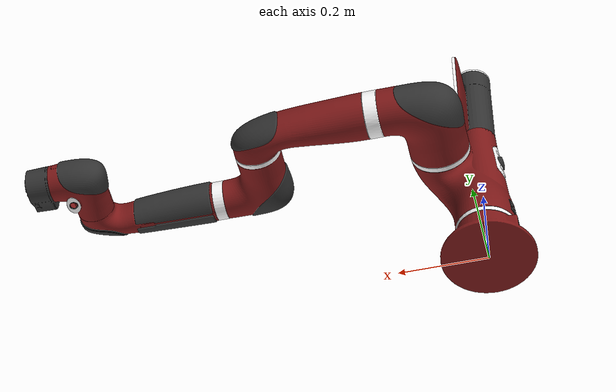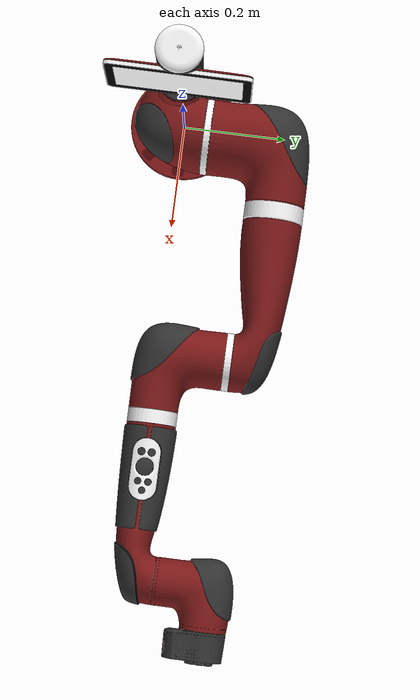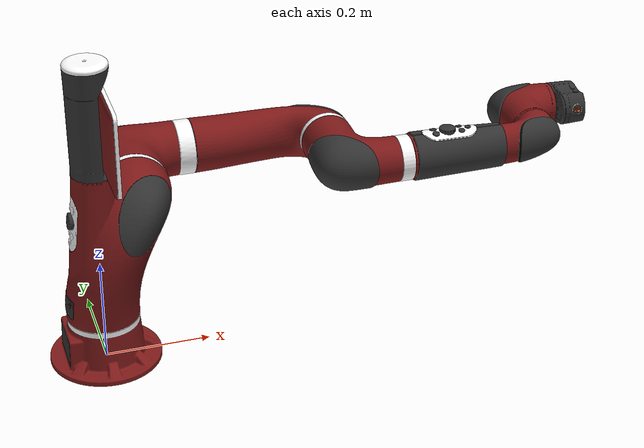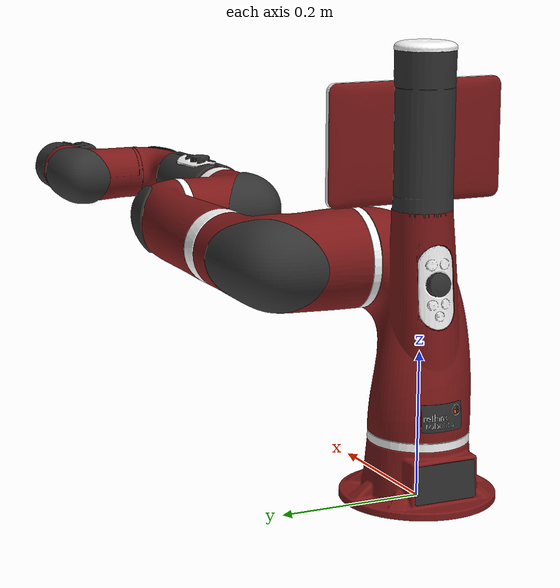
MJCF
<?xml version="1.0" ?>
<mujoco model="sawyer">
	<compiler meshdir="sawyer/meshes" texturedir="sawyer/textures" angle="radian" autolimits="true" balanceinertia="true" boundmass="0.000001" boundinertia="0.000001"/>
	<default>
		<default class="visual">
			<geom contype="0" conaffinity="0"/>
		</default>
		<default class="collision">
			<geom rgba="1.0 0.0 0.0 0.0"/>
		</default>
	</default>
	<asset>
		<mesh name="base_0" file="stl/base_0.stl" scale="1.0 1.0 1.0"/>
		<mesh name="base_1" file="stl/base_1.stl" scale="1.0 1.0 1.0"/>
		<mesh name="l0_0" file="stl/l0_0.stl" scale="1.0 1.0 1.0"/>
		<mesh name="l0_1" file="stl/l0_1.stl" scale="1.0 1.0 1.0"/>
		<mesh name="l0_2" file="stl/l0_2.stl" scale="1.0 1.0 1.0"/>
		<mesh name="l0_3" file="stl/l0_3.stl" scale="1.0 1.0 1.0"/>
		<mesh name="l0_4" file="stl/l0_4.stl" scale="1.0 1.0 1.0"/>
		<mesh name="l0_5" file="stl/l0_5.stl" scale="1.0 1.0 1.0"/>
		<mesh name="l0_6" file="stl/l0_6.stl" scale="1.0 1.0 1.0"/>
		<mesh name="head_0" file="stl/head_0.stl" scale="1.0 1.0 1.0"/>
		<mesh name="head_2" file="stl/head_2.stl" scale="1.0 1.0 1.0"/>
		<mesh name="head_3" file="stl/head_3.stl" scale="1.0 1.0 1.0"/>
		<mesh name="head_5" file="stl/head_5.stl" scale="1.0 1.0 1.0"/>
		<mesh name="head_6" file="stl/head_6.stl" scale="1.0 1.0 1.0"/>
		<mesh name="head_7" file="stl/head_7.stl" scale="1.0 1.0 1.0"/>
		<mesh name="head_8" file="stl/head_8.stl" scale="1.0 1.0 1.0"/>
		<mesh name="head_9" file="stl/head_9.stl" scale="1.0 1.0 1.0"/>
		<mesh name="l1_0" file="stl/l1_0.stl" scale="1.0 1.0 1.0"/>
		<mesh name="l1_1" file="stl/l1_1.stl" scale="1.0 1.0 1.0"/>
		<mesh name="l1_2" file="stl/l1_2.stl" scale="1.0 1.0 1.0"/>
		<mesh name="l2_0" file="stl/l2_0.stl" scale="1.0 1.0 1.0"/>
		<mesh name="l2_1" file="stl/l2_1.stl" scale="1.0 1.0 1.0"/>
		<mesh name="l2_2" file="stl/l2_2.stl" scale="1.0 1.0 1.0"/>
		<mesh name="l2_3" file="stl/l2_3.stl" scale="1.0 1.0 1.0"/>
		<mesh name="l2_4" file="stl/l2_4.stl" scale="1.0 1.0 1.0"/>
		<mesh name="l3_0" file="stl/l3_0.stl" scale="1.0 1.0 1.0"/>
		<mesh name="l3_1" file="stl/l3_1.stl" scale="1.0 1.0 1.0"/>
		<mesh name="l3_2" file="stl/l3_2.stl" scale="1.0 1.0 1.0"/>
		<mesh name="l3_3" file="stl/l3_3.stl" scale="1.0 1.0 1.0"/>
		<mesh name="l4_0" file="stl/l4_0.stl" scale="1.0 1.0 1.0"/>
		<mesh name="l4_1" file="stl/l4_1.stl" scale="1.0 1.0 1.0"/>
		<mesh name="l4_2" file="stl/l4_2.stl" scale="1.0 1.0 1.0"/>
		<mesh name="l4_3" file="stl/l4_3.stl" scale="1.0 1.0 1.0"/>
		<mesh name="l4_4" file="stl/l4_4.stl" scale="1.0 1.0 1.0"/>
		<mesh name="l4_5" file="stl/l4_5.stl" scale="1.0 1.0 1.0"/>
		<mesh name="l4_6" file="stl/l4_6.stl" scale="1.0 1.0 1.0"/>
		<mesh name="l4_7" file="stl/l4_7.stl" scale="1.0 1.0 1.0"/>
		<mesh name="l5_0" file="stl/l5_0.stl" scale="1.0 1.0 1.0"/>
		<mesh name="l5_1" file="stl/l5_1.stl" scale="1.0 1.0 1.0"/>
		<mesh name="l5_2" file="stl/l5_2.stl" scale="1.0 1.0 1.0"/>
		<mesh name="l5_3" file="stl/l5_3.stl" scale="1.0 1.0 1.0"/>
		<mesh name="l5_4" file="stl/l5_4.stl" scale="1.0 1.0 1.0"/>
		<mesh name="l6_0" file="stl/l6_0.stl" scale="1.0 1.0 1.0"/>
		<mesh name="l6_1" file="stl/l6_1.stl" scale="1.0 1.0 1.0"/>
		<mesh name="l6_2" file="stl/l6_2.stl" scale="1.0 1.0 1.0"/>
		<mesh name="l6_3" file="stl/l6_3.stl" scale="1.0 1.0 1.0"/>
		<mesh name="l6_4" file="stl/l6_4.stl" scale="1.0 1.0 1.0"/>
		<mesh name="l6_5" file="stl/l6_5.stl" scale="1.0 1.0 1.0"/>
		<material name="black" rgba="0.20000000298023224 0.20000000298023224 0.20000000298023224 1.0" emission="0.0" specular="0.5"/>
		<material name="red" rgba="0.5 0.10000000149011612 0.10000000149011612 1.0" emission="0.0" specular="0.5"/>
		<material name="Mtl7" rgba="0.2509799897670746 0.2509799897670746 0.2509799897670746 1.0" emission="0.0" specular="0.5"/>
		<material name="off_white" rgba="0.792156994342804 0.8196079730987549 0.9294120073318481 1.0" emission="0.0" specular="0.5"/>
		<material name="Mtl4" rgba="1.0 0.4039219915866852 0.12156900018453598 1.0" emission="0.0" specular="0.5"/>
		<material name="Mtl3" rgba="0.16862699389457703 0.1529410034418106 0.1411760002374649 1.0" emission="0.0" specular="0.5"/>
		<material name="white" rgba="1.0 1.0 1.0 1.0" emission="0.0" specular="0.5"/>
		<material name="dark_black" rgba="0.0 0.0 0.0 1.0" emission="0.0" specular="0.0"/>
		<material name="Mtl5_001" rgba="0.5019609928131104 0.5019609928131104 0.5019609928131104 1.0" emission="0.0" specular="0.5"/>
		<material name="Mtl5_002" rgba="0.10588199645280838 0.10588199645280838 0.10588199645280838 1.0" emission="0.0" specular="0.5"/>
		<material name="Mtl6_002" rgba="0.749019980430603 0.749019980430603 0.749019980430603 1.0" emission="0.0" specular="0.5"/>
		<material name="Mtl4_001" rgba="0.8666669726371765 0.9058820009231567 1.0 1.0" emission="0.0" specular="0.5"/>
	</asset>
	<worldbody>
		<body name="sawyer" pos="0.0 0.0 0.0" quat="1.0 0.0 0.0 0.0">
			<body name="base" pos="0.0 0.0 0.0" quat="1.0 0.0 0.0 0.0">
				<geom name="Geom_0" type="mesh" pos="-0.07485772669315338 -1.478894091633265e-06 0.04059053584933281" quat="0.707025408744812 0.7070662975311279 0.009282732382416725 -0.009283269755542278" mesh="base_0" material="black" class="visual"/>
				<geom name="Geom_1" type="mesh" pos="0.0020945481956005096 -3.3228158713427547e-07 0.032897233963012695" quat="0.5008381009101868 0.5009832978248596 -0.499013751745224 0.4991615116596222" mesh="base_1" material="red" class="visual"/>
				<body name="right_l0" pos="0.0 0.0 0.07999999821186066" quat="1.0 0.0 0.0 0.0">
					<inertial mass="5.321300029754639" pos="0.024364499375224113 0.010968799702823162 0.1436309963464737" quat="0.8948211073875427 0.00899450108408928 -0.17028002440929413 0.4125760495662689" diaginertia="0.06515990197658539 0.051095400005578995 0.018622100353240967"/>
					<geom name="Geom_2" type="mesh" pos="-0.041641995310783386 0.015453800559043884 0.21742893755435944" quat="1.0 0.0 0.0 0.0" mesh="l0_0" material="Mtl7" class="visual"/>
					<geom name="Geom_3" type="mesh" pos="0.04999122396111488 -0.07890910655260086 0.17386884987354279" quat="0.32064926624298096 0.5709735155105591 0.630225419998169 0.41712018847465515" mesh="l0_1" material="off_white" class="visual"/>
					<geom name="Geom_4" type="mesh" pos="0.024971013888716698 -0.005032683257013559 0.17073991894721985" quat="0.6750409007072449 0.052845682948827744 0.12056156247854233 0.7259421348571777" mesh="l0_2" material="red" class="visual"/>
					<geom name="Geom_5" type="mesh" pos="-0.06431664526462555 -0.01801265962421894 0.05516261234879494" quat="1.0 0.0 0.0 0.0" mesh="l0_3" material="Mtl4" class="visual"/>
					<geom name="Geom_6" type="mesh" pos="-0.06594432145357132 0.018639573827385902 0.04154329001903534" quat="0.38285180926322937 0.9159631729125977 -0.04633520171046257 -0.11085579544305801" mesh="l0_4" material="Mtl3" class="visual"/>
					<geom name="Geom_7" type="mesh" pos="0.00893645454198122 0.009335929527878761 0.07952547073364258" quat="0.5870007872581482 0.03247741609811783 0.1206262856721878 0.7998903393745422" mesh="l0_5" material="white" class="visual"/>
					<geom name="Geom_8" type="mesh" pos="0.04399951174855232 -0.03097422979772091 0.1974749118089676" quat="0.7764089107513428 0.2554095983505249 0.2455173134803772 0.5212258100509644" mesh="l0_6" material="black" class="visual"/>
					<geom name="Geom_9" type="capsule" pos="0.0 0.0 0.12250000238418579" quat="6.123234262925839e-17 1.0 0.0 0.0" size="0.07000000029802322 0.1274999976158142 0.0" class="collision"/>
					<joint name="right_j0" type="hinge" pos="0.0 0.0 0.0" range="-3.050299882888794 3.050299882888794" axis="0.0 0.0 1.0"/>
					<body name="right_l1" pos="0.08100000023841858 0.05000000074505806 0.2370000034570694" quat="0.5 -0.5 0.5 0.5">
						<inertial mass="4.505000114440918" pos="-0.00308490009047091 -0.02681099995970726 0.09252099692821503" quat="0.424888014793396 0.8919870257377625 0.13236400485038757 -0.07942940294742584" diaginertia="0.022433899343013763 0.02216240018606186 0.009709710255265236"/>
						<geom name="Geom_20" type="mesh" pos="-7.629238098161295e-06 0.016234004870057106 0.15072041749954224" quat="0.6250988245010376 0.330392450094223 -0.3303552567958832 0.6252661347389221" mesh="l1_0" material="black" class="visual"/>
						<geom name="Geom_21" type="mesh" pos="-4.439407803147333e-06 -0.020526036620140076 0.09934993833303452" quat="0.6474507451057434 0.28391146659851074 -0.2838706076145172 0.6477802395820618" mesh="l1_1" material="red" class="visual"/>
						<geom name="Geom_22" type="mesh" pos="-3.6162049354970804e-07 -0.0600593127310276 0.07451558858156204" quat="0.657308042049408 0.2606419622898102 -0.2606435716152191 0.6573255658149719" mesh="l1_2" material="white" class="visual"/>
						<geom name="Geom_23" type="capsule" pos="0.0 0.0 0.03500000014901161" quat="6.123234262925839e-17 1.0 0.0 0.0" size="0.06800000369548798 0.0949999988079071 0.0" class="collision"/>
						<joint name="right_j1" type="hinge" pos="0.0 0.0 0.0" range="-3.809499979019165 2.2736001014709473" axis="0.0 0.0 1.0"/>
						<body name="right_l2" pos="0.0 -0.14000000059604645 0.14249999821186066" quat="0.7071067690849304 0.7071067690849304 0.0 0.0">
							<inertial mass="1.7450000047683716" pos="-0.00016044000221882015 -0.014967000111937523 0.13582000136375427" quat="0.7078312635421753 -0.05247611925005913 0.0516006164252758 0.7025372385978699" diaginertia="0.02579279989004135 0.025505999103188515 0.0029251601081341505"/>
							<geom name="Geom_24" type="mesh" pos="0.00020539479737635702 0.011755594052374363 0.23551559448242188" quat="0.3904694616794586 0.5895240902900696 0.3904353678226471 0.5895380973815918" mesh="l2_0" material="off_white" class="visual"/>
							<geom name="Geom_25" type="mesh" pos="-0.00020235597912687808 0.011688808910548687 0.23461543023586273" quat="0.3857412338256836 0.5924391746520996 0.39733511209487915 0.5851020216941833" mesh="l2_1" material="Mtl5_002" class="visual"/>
							<geom name="Geom_26" type="mesh" pos="2.1128652161195305e-09 -0.009260267950594425 0.05906962975859642" quat="0.7048347592353821 0.056638848036527634 -0.056638848036527634 0.7048347592353821" mesh="l2_2" material="white" class="visual"/>
							<geom name="Geom_27" type="mesh" pos="-1.680450736785133e-06 0.01580784283578396 0.25848978757858276" quat="0.6962909698486328 0.12316566705703735 -0.12302659451961517 0.6963286399841309" mesh="l2_3" material="black" class="visual"/>
							<geom name="Geom_28" type="mesh" pos="1.8811221025316627e-06 -0.0024170365650206804 0.13505710661411285" quat="0.7064913511276245 0.03650054335594177 -0.03649716079235077 0.705836832523346" mesh="l2_4" material="red" class="visual"/>
							<geom name="Geom_29" type="capsule" pos="0.0 0.0 0.054999999701976776" quat="6.123234262925839e-17 1.0 0.0 0.0" size="0.054999999701976776 0.20499999821186066 0.0" class="collision"/>
							<joint name="right_j2" type="hinge" pos="0.0 0.0 0.0" range="-3.04259991645813 3.04259991645813" axis="0.0 0.0 1.0"/>
							<body name="right_l3" pos="0.0 -0.041999999433755875 0.25999999046325684" quat="0.7071067690849304 -0.7071067690849304 0.0 0.0">
								<inertial mass="2.509700059890747" pos="-0.004813500214368105 -0.02810000069439411 -0.08415400236845016" quat="0.9029988646507263 0.3853909373283386 -0.08809008449316025 0.16824696958065033" diaginertia="0.010240400210022926 0.009699700400233269 0.0036962199956178665"/>
								<geom name="Geom_30" type="mesh" pos="0.0008621378801763058 0.04723334684967995 -0.06765618175268173" quat="0.5 0.5 0.5 0.5" mesh="l3_0" material="off_white" class="visual"/>
								<geom name="Geom_31" type="mesh" pos="-8.467022780678235e-06 -0.02452612854540348 -0.08430895209312439" quat="0.659473180770874 -0.2549700140953064 0.25486281514167786 0.6596441268920898" mesh="l3_1" material="red" class="visual"/>
								<geom name="Geom_32" type="mesh" pos="-1.0522006732571754e-06 -0.05722404643893242 -0.06923932582139969" quat="0.6575967073440552 -0.26001739501953125 0.2599969208240509 0.6575402021408081" mesh="l3_2" material="white" class="visual"/>
								<geom name="Geom_33" type="mesh" pos="1.524305616840138e-06 0.014440644532442093 -0.13098832964897156" quat="0.2853597104549408 0.6469870805740356 -0.6469313502311707 0.28540751338005066" mesh="l3_3" material="black" class="visual"/>
								<geom name="Geom_34" type="capsule" pos="0.0 0.0 -0.042500000447034836" quat="6.123234262925839e-17 1.0 0.0 0.0" size="0.054999999701976776 0.07249999791383743 0.0" class="collision"/>
								<joint name="right_j3" type="hinge" pos="0.0 0.0 0.0" range="-3.0439000129699707 3.0439000129699707" axis="0.0 0.0 1.0"/>
								<body name="right_l4" pos="0.0 -0.125 -0.1264999955892563" quat="0.7071067690849304 0.7071067690849304 0.0 0.0">
									<inertial mass="1.1136000156402588" pos="-0.0018891700310632586 0.006899479776620865 0.1340949982404709" quat="0.8032470345497131 0.031244002282619476 -0.029840901494026184 0.5940770506858826" diaginertia="0.013655499555170536 0.013549800030887127 0.001273849979043007"/>
									<geom name="Geom_35" type="mesh" pos="-0.04113747924566269 -0.0004640524566639215 0.07782932370901108" quat="0.9999693632125854 0.0077166929841041565 0.0012960745953023434 1.0001715963880997e-05" mesh="l4_0" material="Mtl7" class="visual"/>
									<geom name="Geom_36" type="mesh" pos="-0.0385700948536396 0.0036621461622416973 0.08737674355506897" quat="0.9903295636177063 -0.09333489835262299 0.02273738570511341 -0.10009501129388809" mesh="l4_1" material="black" class="visual"/>
									<geom name="Geom_37" type="mesh" pos="-0.03828736022114754 -0.00014584316522814333 0.08496664464473724" quat="0.9999420642852783 0.0020595381502062082 0.006528248079121113 -0.008309401571750641" mesh="l4_2" material="Mtl6_002" class="visual"/>
									<geom name="Geom_38" type="mesh" pos="-0.041894566267728806 0.0001418930769432336 0.08472036570310593" quat="0.9999272227287292 -0.005081682465970516 0.006391556933522224 -0.008878039196133614" mesh="l4_3" material="white" class="visual"/>
									<geom name="Geom_39" type="mesh" pos="-0.03830757737159729 -2.7441590191301657e-06 0.08568595349788666" quat="0.9999224543571472 -0.0004176835936959833 0.00545007036998868 -0.011192242614924908" mesh="l4_4" material="off_white" class="visual"/>
									<geom name="Geom_40" type="mesh" pos="-0.009125388227403164 0.002550688339397311 0.19675889611244202" quat="0.7409397959709167 0.02689535543322563 0.06831380724906921 0.6675463318824768" mesh="l4_5" material="dark_black" class="visual"/>
									<geom name="Geom_41" type="mesh" pos="0.0007641560514457524 0.008371501229703426 0.12936623394489288" quat="0.7119211554527283 -0.034897901117801666 0.0328463576734066 0.7006222605705261" mesh="l4_6" material="red" class="visual"/>
									<geom name="Geom_42" type="mesh" pos="0.0005165478796698153 -0.002769012004137039 0.1395190805196762" quat="0.7065168023109436 0.011982783675193787 -0.014483349397778511 0.7074465751647949" mesh="l4_7" material="black" class="visual"/>
									<geom name="Geom_43" type="capsule" pos="0.0 0.0 0.07000000029802322" quat="6.123234262925839e-17 1.0 0.0 0.0" size="0.04500000178813934 0.20000000298023224 0.0" class="collision"/>
									<joint name="right_j4" type="hinge" pos="0.0 0.0 0.0" range="-2.976099967956543 2.976099967956543" axis="0.0 0.0 1.0"/>
									<body name="right_l5" pos="0.0 0.03099999949336052 0.2750000059604645" quat="0.7071067690849304 -0.7071067690849304 0.0 0.0">
										<inertial mass="1.5625" pos="0.00611330009996891 -0.02369699999690056 0.0764160007238388" quat="0.40407586097717285 0.9134997129440308 0.04731248319149017 0.001583349541760981" diaginertia="0.004741310141980648 0.004228570032864809 0.0019067199900746346"/>
										<geom name="Geom_44" type="mesh" pos="0.04532376676797867 -0.03356976807117462 0.08241508156061172" quat="0.7071067690849304 0.7071067690849304 0.0 0.0" mesh="l5_0" material="Mtl5_001" class="visual"/>
										<geom name="Geom_45" type="mesh" pos="-0.0050115324556827545 5.399343081080588e-06 0.009804404340684414" quat="0.49733591079711914 0.5040051937103271 -0.49598079919815063 0.5026319026947021" mesh="l5_1" material="Mtl4_001" class="visual"/>
										<geom name="Geom_46" type="mesh" pos="0.0093096774071455 -0.006783002987504005 0.01736132614314556" quat="0.8707842826843262 0.13466234505176544 0.38698503375053406 -0.2717413902282715" mesh="l5_2" material="white" class="visual"/>
										<geom name="Geom_47" type="mesh" pos="-0.00015255381003953516 -0.016654599457979202 0.07227076590061188" quat="0.6317414045333862 0.2615343928337097 -0.25651729106903076 0.6831554770469666" mesh="l5_3" material="red" class="visual"/>
										<geom name="Geom_48" type="mesh" pos="0.002254846040159464 0.009424086660146713 0.11999830603599548" quat="0.6269304156303406 0.3770274519920349 -0.33140110969543457 0.5958035588264465" mesh="l5_4" material="black" class="visual"/>
										<geom name="Geom_49" type="capsule" pos="0.0 0.0 0.03999999910593033" quat="6.123234262925839e-17 1.0 0.0 0.0" size="0.04500000178813934 0.05999999865889549 0.0" class="collision"/>
										<geom name="Geom_50" type="capsule" pos="0.0 -0.04100000113248825 0.10499999672174454" quat="0.7071067690849304 -0.7071067690849304 0.0 0.0" size="0.04500000178813934 0.04100000113248825 0.0" class="collision"/>
										<joint name="right_j5" type="hinge" pos="0.0 0.0 0.0" range="-2.976099967956543 2.976099967956543" axis="0.0 0.0 1.0"/>
										<body name="right_l6" pos="0.0 -0.10999999940395355 0.10530000180006027" quat="0.061624810099601746 0.0616300106048584 -0.7044160962104797 0.7044160962104797">
											<inertial mass="0.32919999957084656" pos="-8.072600394370966e-06 0.008583799935877323 -0.0049565997906029224" quat="0.4790440499782562 0.5156360864639282 -0.5130690336227417 0.49132105708122253" diaginertia="0.0003602679935283959 0.00031107800896279514 0.00021498400019481778"/>
											<geom name="Geom_51" type="mesh" pos="-0.003610120387747884 0.06668666750192642 -0.0009112398256547749" quat="1.0 0.0 0.0 0.0" mesh="l6_0" material="Mtl4" class="visual"/>
											<geom name="Geom_52" type="mesh" pos="5.573861017182935e-06 0.06600774824619293 0.000615371682215482" quat="0.4921293258666992 0.5077487230300903 0.4900192618370056 0.5097853541374207" mesh="l6_1" material="white" class="visual"/>
											<geom name="Geom_53" type="mesh" pos="0.004251166246831417 0.06655088067054749 0.0012765834107995033" quat="1.0 0.0 0.0 0.0" mesh="l6_2" material="red" class="visual"/>
											<geom name="Geom_54" type="mesh" pos="-1.0324153087992727e-08 4.289119104328165e-08 -0.03616039454936981" quat="0.4648391902446747 0.532845675945282 -0.4648391902446747 0.532845675945282" mesh="l6_3" material="black" class="visual"/>
											<geom name="Geom_55" type="mesh" pos="9.632401543058222e-07 0.008206682279706001 -0.028984084725379944" quat="0.48383134603500366 0.5161692500114441 -0.5158120393753052 0.4831298291683197" mesh="l6_4" material="black" class="visual"/>
											<geom name="Geom_56" type="mesh" pos="-9.154856343229767e-06 0.010640062391757965 -0.006468773819506168" quat="0.5111276507377625 0.4895099699497223 -0.4889838993549347 0.5099247694015503" mesh="l6_5" material="black" class="visual"/>
											<geom name="Geom_57" type="cylinder" pos="0.0 0.0 0.0" quat="1.0 0.0 0.0 0.0" size="0.04500000178813934 0.019999999552965164 0.0" class="collision"/>
											<joint name="right_j6" type="hinge" pos="0.0 0.0 0.0" range="-4.712399959564209 4.712399959564209" axis="0.0 0.0 1.0"/>
										</body>
									</body>
								</body>
							</body>
						</body>
					</body>
					<body name="head" pos="0.0 0.0 0.29649999737739563" quat="1.0 0.0 0.0 0.0">
						<inertial mass="1.5794999599456787" pos="0.005322259850800037 -2.654730087670032e-05 0.10209999978542328" quat="0.9999933242797852 7.083842501742765e-05 -0.003598121227696538 -0.0006262672250159085" diaginertia="0.011833400465548038 0.008270969614386559 0.004965819884091616"/>
						<geom name="Geom_10" type="mesh" pos="3.682423965756243e-08 3.697168438066001e-08 0.001067510456778109" quat="0.33674782514572144 0.6217724084854126 -0.33674782514572144 0.6217724084854126" mesh="head_0" material="black" class="visual"/>
						<geom name="Geom_11" type="mesh" pos="0.006682465318590403 0.018973087891936302 0.05824505537748337" quat="0.9860661625862122 0.15271791815757751 0.06594937294721603 0.0011813943274319172" mesh="head_2" material="off_white" class="visual"/>
						<geom name="Geom_12" type="mesh" pos="0.01214071549475193 -0.0018325537675991654 0.09827320277690887" quat="0.9991581439971924 -0.04081937298178673 -0.0012028103228658438 -0.003922765608876944" mesh="head_3" material="Mtl7" class="visual"/>
						<geom name="Geom_13" type="mesh" pos="-0.007736013736575842 -3.1440943075722316e-06 0.10534539073705673" quat="0.9998405575752258 6.34340030956082e-05 -0.017855286598205566 0.00022112914302852005" mesh="head_5" material="black" class="visual"/>
						<geom name="Geom_14" type="mesh" pos="0.01654263772070408 2.3454672373190988e-06 0.14433149993419647" quat="0.9977629780769348 0.0001240648125531152 -0.06685063242912292 2.1837355234310962e-05" mesh="head_6" material="white" class="visual"/>
						<geom name="Geom_15" type="mesh" pos="0.02796252630650997 1.1137315595988184e-05 0.1012677326798439" quat="0.7070940732955933 0.7071194648742676 2.147517807316035e-05 -2.147594750567805e-05" mesh="head_7" material="dark_black" class="visual"/>
						<geom name="Geom_16" type="mesh" pos="0.006564076989889145 6.432921054511098e-06 0.03852730244398117" quat="0.9983767867088318 -0.00018446671310812235 0.056953758001327515 2.3310265532927588e-05" mesh="head_8" material="red" class="visual"/>
						<geom name="Geom_17" type="mesh" pos="0.028526650741696358 -0.04999541863799095 0.1081274151802063" quat="0.9356042742729187 -0.35305044054985046 -0.0002723135403357446 0.00010275756358169019" mesh="head_9" material="Mtl5_001" class="visual"/>
						<geom name="Geom_18" type="capsule" pos="-0.004999999888241291 0.0 0.11249999701976776" quat="6.123234262925839e-17 1.0 0.0 0.0" size="0.03999999910593033 0.0925000011920929 0.0" class="collision"/>
						<geom name="Geom_19" type="box" pos="0.02500000037252903 0.0 0.10000000149011612" quat="1.0 0.0 0.0 0.0" size="0.009999999776482582 0.12999999523162842 0.07999999821186066" class="collision"/>
					</body>
				</body>
			</body>
		</body>
	</worldbody>
	<equality/>
</mujoco>
